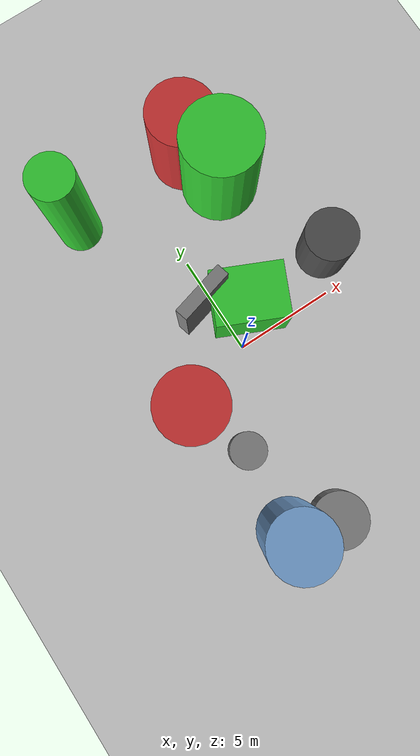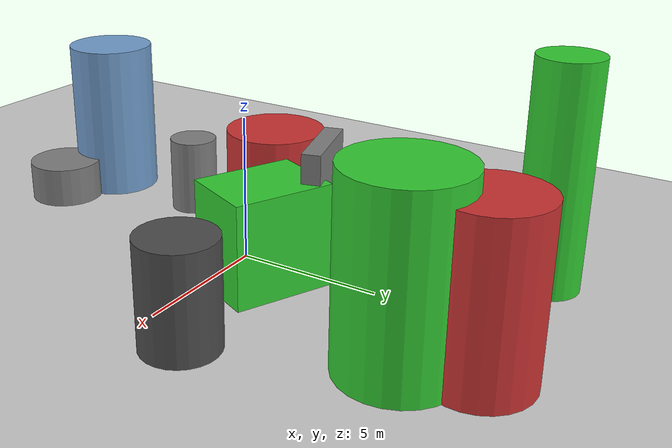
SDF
<?xml version='1.0'?>
<sdf version='1.6'>
  <world name='default'>
    <!-- Sun light -->
    <light name='sun' type='directional'>
      <cast_shadows>1</cast_shadows>
      <pose>0 0 10 0 0 0</pose>
      <diffuse>0.8 0.8 0.8 1</diffuse>
      <specular>0.2 0.2 0.2 1</specular>
      <attenuation>
        <range>1000</range>
        <constant>0.9</constant>
        <linear>0.01</linear>
        <quadratic>0.001</quadratic>
      </attenuation>
      <direction>-0.5 0.1 -0.9</direction>
    </light>

    <!-- Ground plane -->
    <model name='ground_plane'>
      <static>1</static>
      <link name='link'>
        <collision name='collision'>
          <geometry>
            <plane>
              <normal>0 0 1</normal>
              <size>100 100</size>
            </plane>
          </geometry>
          <surface>
            <contact>
              <collide_bitmask>65535</collide_bitmask>
              <ode/>
            </contact>
            <friction>
              <ode>
                <mu>100</mu>
                <mu2>50</mu2>
              </ode>
              <torsional><ode/></torsional>
            </friction>
            <bounce/>
          </surface>
          <max_contacts>10</max_contacts>
        </collision>
        <visual name='visual'>
          <cast_shadows>0</cast_shadows>
          <geometry>
            <plane>
              <normal>0 0 1</normal>
              <size>100 100</size>
            </plane>
          </geometry>
          <material>
            <script>
              <uri>file://media/materials/scripts/gazebo.material</uri>
              <n>Gazebo/Grey</n>
            </script>
          </material>
        </visual>
      </link>
    </model>

    <!-- Environment -->
    <magnetic_field>6e-06 2.3e-05 -4.2e-05</magnetic_field>
    <atmosphere type='adiabatic'/>
    <physics name='default_physics' default='0' type='ode'>
      <gravity>0 0 -9.8</gravity>
      <max_step_size>0.004</max_step_size>
      <real_time_factor>1</real_time_factor>
      <real_time_update_rate>250</real_time_update_rate>
    </physics>
    <scene>
      <ambient>0.4 0.4 0.4 1</ambient>
      <background>0.7 0.7 0.7 1</background>
      <shadows>1</shadows>
    </scene>
    <wind/>
    <spherical_coordinates>
      <surface_model>EARTH_WGS84</surface_model>
      <latitude_deg>0</latitude_deg>
      <longitude_deg>0</longitude_deg>
      <elevation>0</elevation>
      <heading_deg>0</heading_deg>
    </spherical_coordinates>

    <!-- ============ OBSTACLES (10) ============ -->
    <model name='obs_00'>
      <static>1</static>
      <link name='link'>
        <visual name='visual'>
          <geometry>
            <box>
              <size>3.4935 2.6525 3.5353</size>
            </box>
          </geometry>
          <material>
            <script>
              <n>Gazebo/Green</n>
              <uri>file://media/materials/scripts/gazebo.material</uri>
            </script>
            <ambient>0.2 0.8 0.2 1</ambient>
          </material>
        </visual>
        <collision name='collision'>
          <geometry>
            <box>
              <size>3.4935 2.6525 3.5353</size>
            </box>
          </geometry>
          <max_contacts>10</max_contacts>
          <surface>
            <contact><ode/></contact>
            <bounce/>
            <friction>
              <ode><mu>1</mu><mu2>1</mu2></ode>
              <torsional><ode/></torsional>
            </friction>
          </surface>
        </collision>
      </link>
      <pose>1.2747 1.5894 1.7677 0 0 2.7151</pose>
    </model>

    <model name='obs_01'>
      <static>1</static>
      <link name='link'>
        <visual name='visual'>
          <geometry>
            <cylinder>
              <radius>1.9153</radius>
              <length>6.1724</length>
            </cylinder>
          </geometry>
          <material>
            <script>
              <n>Gazebo/Green</n>
              <uri>file://media/materials/scripts/gazebo.material</uri>
            </script>
            <ambient>0.2 0.8 0.2 1</ambient>
          </material>
        </visual>
        <collision name='collision'>
          <geometry>
            <cylinder>
              <radius>1.9153</radius>
              <length>6.1724</length>
            </cylinder>
          </geometry>
          <max_contacts>10</max_contacts>
          <surface>
            <contact><ode/></contact>
            <bounce/>
            <friction>
              <ode><mu>1</mu><mu2>1</mu2></ode>
              <torsional><ode/></torsional>
            </friction>
          </surface>
        </collision>
      </link>
      <pose>3.6227 7.6410 3.0862 0 0 1.8232</pose>
    </model>

    <model name='obs_02'>
      <static>1</static>
      <link name='link'>
        <visual name='visual'>
          <geometry>
            <cylinder>
              <radius>1.6482</radius>
              <length>5.5629</length>
            </cylinder>
          </geometry>
          <material>
            <script>
              <n>Gazebo/Red</n>
              <uri>file://media/materials/scripts/gazebo.material</uri>
            </script>
            <ambient>0.8 0.2 0.2 1</ambient>
          </material>
        </visual>
        <collision name='collision'>
          <geometry>
            <cylinder>
              <radius>1.6482</radius>
              <length>5.5629</length>
            </cylinder>
          </geometry>
          <max_contacts>10</max_contacts>
          <surface>
            <contact><ode/></contact>
            <bounce/>
            <friction>
              <ode><mu>1</mu><mu2>1</mu2></ode>
              <torsional><ode/></torsional>
            </friction>
          </surface>
        </collision>
      </link>
      <pose>2.8598 9.7306 2.7814 0 0 1.4129</pose>
    </model>

    <model name='obs_03'>
      <static>1</static>
      <link name='link'>
        <visual name='visual'>
          <geometry>
            <cylinder>
              <radius>1.0775</radius>
              <length>7.7041</length>
            </cylinder>
          </geometry>
          <material>
            <script>
              <n>Gazebo/Green</n>
              <uri>file://media/materials/scripts/gazebo.material</uri>
            </script>
            <ambient>0.2 0.8 0.2 1</ambient>
          </material>
        </visual>
        <collision name='collision'>
          <geometry>
            <cylinder>
              <radius>1.0775</radius>
              <length>7.7041</length>
            </cylinder>
          </geometry>
          <max_contacts>10</max_contacts>
          <surface>
            <contact><ode/></contact>
            <bounce/>
            <friction>
              <ode><mu>1</mu><mu2>1</mu2></ode>
              <torsional><ode/></torsional>
            </friction>
          </surface>
        </collision>
      </link>
      <pose>-3.5358 9.4195 3.8520 0 0 1.9007</pose>
    </model>

    <model name='obs_04'>
      <static>1</static>
      <link name='link'>
        <visual name='visual'>
          <geometry>
            <cylinder>
              <radius>1.8134</radius>
              <length>3.4041</length>
            </cylinder>
          </geometry>
          <material>
            <script>
              <n>Gazebo/Red</n>
              <uri>file://media/materials/scripts/gazebo.material</uri>
            </script>
            <ambient>0.8 0.2 0.2 1</ambient>
          </material>
        </visual>
        <collision name='collision'>
          <geometry>
            <cylinder>
              <radius>1.8134</radius>
              <length>3.4041</length>
            </cylinder>
          </geometry>
          <max_contacts>10</max_contacts>
          <surface>
            <contact><ode/></contact>
            <bounce/>
            <friction>
              <ode><mu>1</mu><mu2>1</mu2></ode>
              <torsional><ode/></torsional>
            </friction>
          </surface>
        </collision>
      </link>
      <pose>-3.6772 -1.2047 1.7020 0 0 0.3252</pose>
    </model>

    <model name='obs_05'>
      <static>1</static>
      <link name='link'>
        <visual name='visual'>
          <geometry>
            <box>
              <size>2.7614 0.6370 4.5381</size>
            </box>
          </geometry>
          <material>
            <script>
              <n>Gazebo/Grey</n>
              <uri>file://media/materials/scripts/gazebo.material</uri>
            </script>
            <ambient>0.5 0.5 0.5 1</ambient>
          </material>
        </visual>
        <collision name='collision'>
          <geometry>
            <box>
              <size>2.7614 0.6370 4.5381</size>
            </box>
          </geometry>
          <max_contacts>10</max_contacts>
          <surface>
            <contact><ode/></contact>
            <bounce/>
            <friction>
              <ode><mu>1</mu><mu2>1</mu2></ode>
              <torsional><ode/></torsional>
            </friction>
          </surface>
        </collision>
      </link>
      <pose>-0.6216 2.6277 2.2691 0 0 0.2649</pose>
    </model>

    <model name='obs_06'>
      <static>1</static>
      <link name='link'>
        <visual name='visual'>
          <geometry>
            <cylinder>
              <radius>1.2781</radius>
              <length>3.5473</length>
            </cylinder>
          </geometry>
          <material>
            <script>
              <n>Gazebo/DarkGrey</n>
              <uri>file://media/materials/scripts/gazebo.material</uri>
            </script>
            <ambient>0.3 0.3 0.3 1</ambient>
          </material>
        </visual>
        <collision name='collision'>
          <geometry>
            <cylinder>
              <radius>1.2781</radius>
              <length>3.5473</length>
            </cylinder>
          </geometry>
          <max_contacts>10</max_contacts>
          <surface>
            <contact><ode/></contact>
            <bounce/>
            <friction>
              <ode><mu>1</mu><mu2>1</mu2></ode>
              <torsional><ode/></torsional>
            </friction>
          </surface>
        </collision>
      </link>
      <pose>5.9266 1.8284 1.7736 0 0 1.6464</pose>
    </model>

    <model name='obs_07'>
      <static>1</static>
      <link name='link'>
        <visual name='visual'>
          <geometry>
            <cylinder>
              <radius>1.5828</radius>
              <length>5.7523</length>
            </cylinder>
          </geometry>
          <material>
            <script>
              <n>Gazebo/Blue</n>
              <uri>file://media/materials/scripts/gazebo.material</uri>
            </script>
            <ambient>0.447 0.624 0.812 1</ambient>
          </material>
        </visual>
        <collision name='collision'>
          <geometry>
            <cylinder>
              <radius>1.5828</radius>
              <length>5.7523</length>
            </cylinder>
          </geometry>
          <max_contacts>10</max_contacts>
          <surface>
            <contact><ode/></contact>
            <bounce/>
            <friction>
              <ode><mu>1</mu><mu2>1</mu2></ode>
              <torsional><ode/></torsional>
            </friction>
          </surface>
        </collision>
      </link>
      <pose>-2.9612 -8.5162 2.8761 0 0 1.2171</pose>
    </model>

    <model name='obs_08'>
      <static>1</static>
      <link name='link'>
        <visual name='visual'>
          <geometry>
            <cylinder>
              <radius>1.3475</radius>
              <length>1.4614</length>
            </cylinder>
          </geometry>
          <material>
            <script>
              <n>Gazebo/Grey</n>
              <uri>file://media/materials/scripts/gazebo.material</uri>
            </script>
            <ambient>0.5 0.5 0.5 1</ambient>
          </material>
        </visual>
        <collision name='collision'>
          <geometry>
            <cylinder>
              <radius>1.3475</radius>
              <length>1.4614</length>
            </cylinder>
          </geometry>
          <max_contacts>10</max_contacts>
          <surface>
            <contact><ode/></contact>
            <bounce/>
            <friction>
              <ode><mu>1</mu><mu2>1</mu2></ode>
              <torsional><ode/></torsional>
            </friction>
          </surface>
        </collision>
      </link>
      <pose>-0.7652 -9.2479 0.7307 0 0 2.4794</pose>
    </model>

    <model name='obs_09'>
      <static>1</static>
      <link name='link'>
        <visual name='visual'>
          <geometry>
            <cylinder>
              <radius>0.8651</radius>
              <length>2.7640</length>
            </cylinder>
          </geometry>
          <material>
            <script>
              <n>Gazebo/Grey</n>
              <uri>file://media/materials/scripts/gazebo.material</uri>
            </script>
            <ambient>0.5 0.5 0.5 1</ambient>
          </material>
        </visual>
        <collision name='collision'>
          <geometry>
            <cylinder>
              <radius>0.8651</radius>
              <length>2.7640</length>
            </cylinder>
          </geometry>
          <max_contacts>10</max_contacts>
          <surface>
            <contact><ode/></contact>
            <bounce/>
            <friction>
              <ode><mu>1</mu><mu2>1</mu2></ode>
              <torsional><ode/></torsional>
            </friction>
          </surface>
        </collision>
      </link>
      <pose>-2.6252 -4.2585 1.3820 0 0 1.7529</pose>
    </model>

    <!-- GUI camera -->
    <gui fullscreen='0'>
      <camera name='user_camera'>
        <pose>-15 0 18 0 0.85 0.15</pose>
        <view_controller>orbit</view_controller>
        <projection_type>perspective</projection_type>
      </camera>
    </gui>
  </world>
</sdf>
